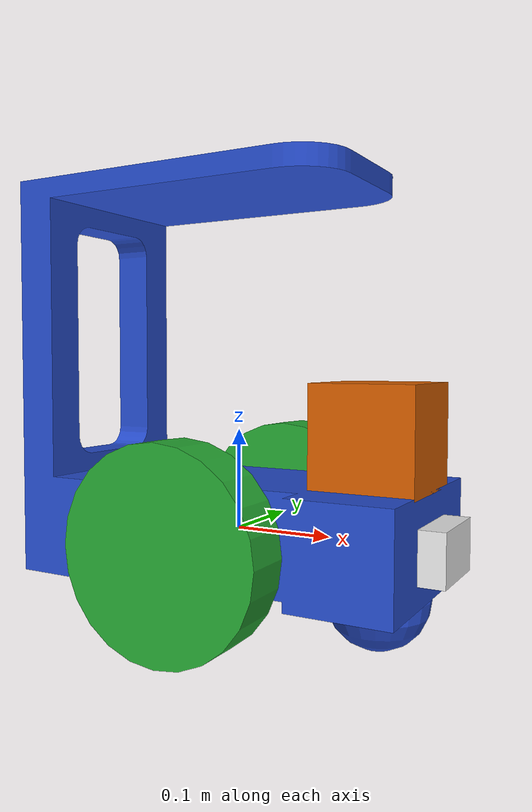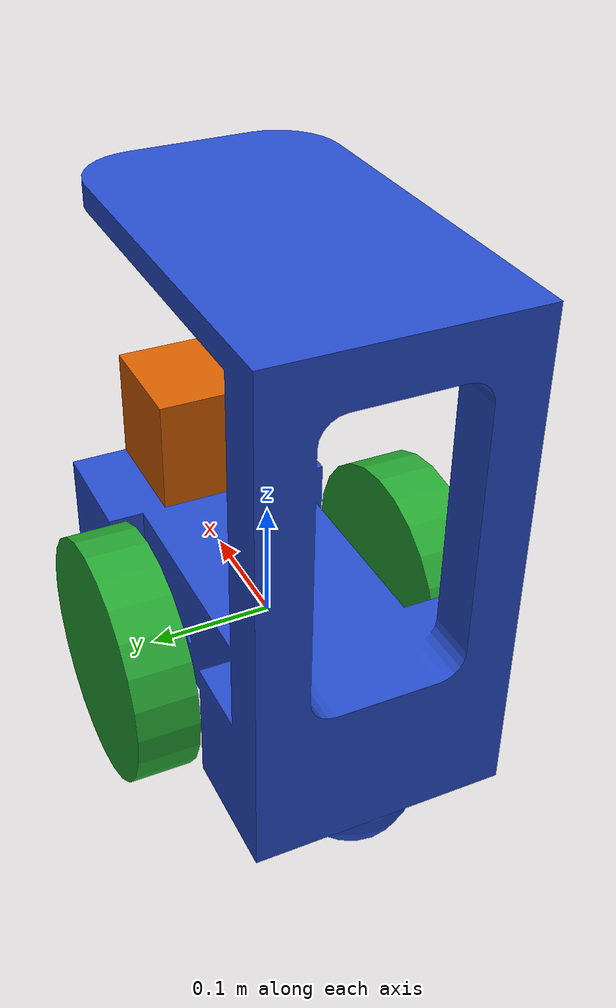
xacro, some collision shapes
<?xml version="1.0"?>
<robot name="my_robot" xmlns:xacro="http://www.ros.org/wiki/xacro">
<xacro:include filename="$(find my_robot)/urdf/my_robot.gazebo" />

  <link name="robot_footprint"></link>

  <joint name="robot_footprint_joint" type="fixed">
    <origin xyz="0 0 0" rpy="0 0 0" />
    <parent link="robot_footprint"/>
    <child link="chassis" />
  </joint>

  <link name='chassis'>
    <pose>0 0 0.1 0 0 0</pose>

    <inertial>
      <mass value="15.0"/>
      <origin xyz="0.0 0 0" rpy=" 0 0 0"/>
      <inertia
          ixx="0.1" ixy="0" ixz="0"
          iyy="0.1" iyz="0"
          izz="0.1"
      />
    </inertial>

    <collision name='collision'>
      <origin xyz="0 0 -0.1" rpy=" 0 0 0"/>
      <geometry>
         <mesh filename="package://my_robot/meshes/base_link.stl" scale="0.001 0.001 0.001"/>
      </geometry>
    </collision>

    <visual name='chassis_visual'>
      <origin xyz="0 0 -0.1" rpy=" 0 0 0"/>
      <geometry>
         <mesh filename="package://my_robot/meshes/base_link.stl" scale="0.001 0.001 0.001"/>
      </geometry>
    </visual>

    <collision name='back_caster_collision'>
      <origin xyz="-0.15 0 -0.015" rpy=" 0 0 0"/>
      <geometry>
        <sphere radius="0.0499"/>
      </geometry>
    </collision>

    <visual name='back_caster_visual'>
      <origin xyz="-0.15 0 -0.05" rpy=" 0 0 0"/>
      <geometry>
        <sphere radius="0.05"/>
      </geometry>
    </visual>

    <collision name='front_caster_collision'>
      <origin xyz="0.15 0 -0.05" rpy=" 0 0 0"/>
      <geometry>
        <sphere radius="0.0499"/>
      </geometry>
    </collision>

    <visual name='front_caster_visual'>
      <origin xyz="0.15 0 -0.05" rpy=" 0 0 0"/>
      <geometry>
        <sphere radius="0.05"/>
      </geometry>
    </visual>

    </link>

  <joint type="continuous" name="left_wheel_hinge">
    <origin xyz="0 0.125 0" rpy="0 0 0"/>
    <child link="left_wheel"/>
    <parent link="chassis"/>
    <axis xyz="0 1 0" rpy="0 0 0"/>
    <limit effort="10000" velocity="1000"/>
    <dynamics damping="1.0" friction="1.0"/>
  </joint>

    <link name='left_wheel'>
    <pose>0 0 0 0 0 0</pose>

    <inertial>
      <mass value="5.0"/>
      <origin xyz="0.0 0 0" rpy=" 0 1.5707 1.5707"/>
      <inertia
          ixx="0.1" ixy="0" ixz="0"
          iyy="0.1" iyz="0"
          izz="0.1"
      />
    </inertial>

    <collision name='collision'>
      <origin xyz="0 0 0" rpy=" 0 1.5707 1.5707"/>
      <geometry>
        <cylinder radius="0.1" length="0.05"/>
      </geometry>
    </collision>

    <visual name='left_wheel_visual'>
      <origin xyz="0 0 0" rpy=" 0 1.5707 1.5707"/>
      <geometry>
        <cylinder radius="0.1" length="0.05"/>
      </geometry>
    </visual>

   </link>

  <joint type="continuous" name="right_wheel_hinge">
    <origin xyz="0 -0.125 0" rpy="0 0 0"/>
    <child link="right_wheel"/>
    <parent link="chassis"/>
    <axis xyz="0 1 0" rpy="0 0 0"/>
    <limit effort="10000" velocity="1000"/>
    <dynamics damping="1.0" friction="1.0"/>
  </joint>

    <link name='right_wheel'>
    <pose>0 0 0 0 0 0</pose>

    <inertial>
      <mass value="5.0"/>
      <origin xyz="0.0 0 0" rpy=" 0 1.5707 1.5707"/>
      <inertia
          ixx="0.1" ixy="0" ixz="0"
          iyy="0.1" iyz="0"
          izz="0.1"
      />
    </inertial>

    <collision name='collision'>
      <origin xyz="0 0 0" rpy=" 0 1.5707 1.5707"/>
      <geometry>
        <cylinder radius="0.1" length="0.05"/>
      </geometry>
    </collision>

    <visual name='right_wheel_visual'>
      <origin xyz="0 0 0" rpy=" 0 1.5707 1.5707"/>
      <geometry>
        <cylinder radius="0.1" length="0.05"/>
      </geometry>
    </visual>

   </link>

 <joint type="fixed" name="camera_joint">
    <origin xyz="0.2 0 0" rpy="0 0 0"/>
    <child link="camera"/>
    <parent link="chassis"/>
    <axis xyz="0 1 0" rpy="0 0 0"/>
  </joint>

    <link name='camera'>
    <pose>0 0 0 0 0 0</pose>

    <inertial>
      <mass value="0.1"/>
      <origin xyz="0.0 0 0" rpy=" 0 0 0"/>
      <inertia
          ixx="1e-6" ixy="0" ixz="0"
          iyy="1e-6" iyz="0"
          izz="1e-6"
      />
    </inertial>

    <collision name='collision'>
      <origin xyz="0 0 0" rpy=" 0 0 0"/>
      <geometry>
        <box size="0.05 0.05 0.05"/>
      </geometry>
    </collision>

    <visual name='camera'>
      <origin xyz="0 0 0" rpy=" 0 0 0"/>
      <geometry>
        <box size="0.05 0.08 0.05"/>
      </geometry>
    </visual>

   </link>

   <joint type="fixed" name="hokuyo_joint">
    <origin xyz="0.15 0 0.1" rpy="0 0 0"/>
    <child link="lidar"/>
    <parent link="chassis"/>
    <axis xyz="0 1 0" rpy="0 0 0"/>
  </joint>

    <link name='lidar'>
    <pose>0 0 0 0 0 0</pose>

    <inertial>
      <mass value="1e-5"/>
      <origin xyz="0.0 0 0" rpy=" 0 0 0"/>
      <inertia
          ixx="1e-6" ixy="0" ixz="0"
          iyy="1e-6" iyz="0"
          izz="1e-6"
      />
    </inertial>

    <collision name='collision'>
      <origin xyz="0 0 0" rpy=" 0 0 0"/>
      <geometry>
        <box size="0.1 0.1 0.1"/>
      </geometry>
    </collision>

    <visual name='lidar'>
      <origin xyz="0 0 0" rpy=" 0 0 0"/>
      <geometry>
        <mesh filename= "package://my_robot/meshes/hokuyo.dae"/>
      </geometry>
    </visual>

   </link>

   <gazebo reference="left_wheel">
    <material>Gazebo/Green</material>
   </gazebo>
   <gazebo reference="right_wheel">
    <material>Gazebo/Green</material>
   </gazebo>
   <gazebo reference="chassis">
    <material>Gazebo/Blue</material>
   </gazebo>
   <gazebo reference="camera">
    <material>Gazebo/White</material>
   </gazebo>

</robot>
